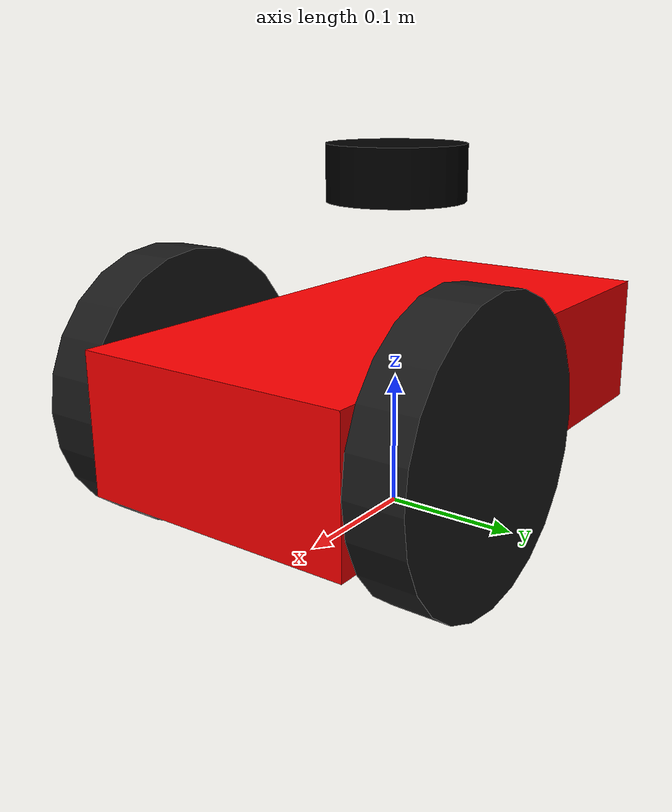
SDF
<?xml version="1.0" ?>
<sdf version="1.8">
  <model name="diff_drive_robot">

    <static>false</static>

    <link name="base_link">
      <pose>0 0 0.1 0 0 0</pose>

      <visual name="chassis_visual">
        <geometry>
          <box><size>0.4 0.2 0.1</size></box>
        </geometry>
        <material>
          <ambient>1.0 0.0 0.0 1.0</ambient>   <diffuse>1.0 0.0 0.0 1.0</diffuse>   <specular>0.5 0.5 0.5 1.0</specular>
        </material>
      </visual>

      <collision name="chassis_collision">
        <geometry>
          <box><size>0.4 0.2 0.1</size></box>
        </geometry>
      </collision>

      <inertial>
        <mass>2.0</mass>
        <inertia>
          <ixx>0.008333</ixx>
          <iyy>0.028333</iyy>
          <izz>0.033333</izz>
          <ixy>0.0</ixy>
          <ixz>0.0</ixz>
          <iyz>0.0</iyz>
        </inertia>
      </inertial>
    </link>

<link name="left_wheel">
      <pose>0.1 0.12 0.1 -1.5707 0 0</pose>
      <visual name="left_wheel_visual">
        <geometry>
          <cylinder><radius>0.1</radius><length>0.04</length></cylinder>
        </geometry>
        <material><ambient>0.1 0.1 0.1 1.0</ambient></material>
      </visual>
      <collision name="left_wheel_collision">
        <geometry>
          <cylinder><radius>0.1</radius><length>0.04</length></cylinder>
        </geometry>
      </collision>
      <inertial>
        <mass>0.5</mass>
        <inertia>
            <ixx>0.001316</ixx>
            <iyy>0.001316</iyy>
            <izz>0.002500</izz>
            <ixy>0.0</ixy>
            <ixz>0.0</ixz>
            <iyz>0.0</iyz>
          </inertia>
        </inertial>
    </link>

    <joint name="left_wheel_joint" type="revolute">
      <parent>base_link</parent>
      <child>left_wheel</child>
      <axis>
        <xyz>0 0 1</xyz>
        <limit>
          <lower>-1e16</lower>
          <upper>1e16</upper>
        </limit>
      </axis>
    </joint>

<link name="right_wheel">
      <pose>0.1 -0.12 0.1 -1.5707 0 0</pose>
      <visual name="right_wheel_visual">
        <geometry>
          <cylinder><radius>0.1</radius><length>0.04</length></cylinder>
        </geometry>
        <material><ambient>0.1 0.1 0.1 1.0</ambient></material>
      </visual>
      <collision name="right_wheel_collision">
        <geometry>
          <cylinder><radius>0.1</radius><length>0.04</length></cylinder>
        </geometry>
      </collision>
      <inertial>
        <mass>0.5</mass>
        <inertia>
            <ixx>0.001316</ixx>
            <iyy>0.001316</iyy>
            <izz>0.002500</izz>
            <ixy>0.0</ixy>
            <ixz>0.0</ixz>
            <iyz>0.0</iyz>
          </inertia>
        </inertial>
    </link>

    <joint name="right_wheel_joint" type="revolute">
      <parent>base_link</parent>
      <child>right_wheel</child>
      <axis>
        <xyz>0 0 1</xyz>
        <limit>
          <lower>-1e16</lower>
          <upper>1e16</upper>
        </limit>
      </axis>
    </joint>

<link name="caster_wheel">
      <pose>-0.15 0.0 0.05 0 0 0</pose>
      <visual name="caster_wheel_visual">
        <geometry>
          <sphere><radius>0.05</radius></sphere>
        </geometry>
        <material><ambient>0.1 0.1 0.1 1.0</ambient></material>
      </visual>
      <collision name="caster_collision">
        <geometry>
          <sphere><radius>0.05</radius></sphere>
        </geometry>
        <surface>
          <friction>
            <ode>
              <mu>0.0</mu>
              <mu2>0.0</mu2>
            </ode>
          </friction>
        </surface>
      </collision>
      <inertial>
        <mass>0.1</mass>
        <inertia>
          <ixx>0.0001</ixx>
          <iyy>0.0001</iyy>
          <izz>0.0001</izz>
          <ixy>0.0</ixy>
          <ixz>0.0</ixz>
          <iyz>0.0</iyz>
        </inertia>
      </inertial>
    </link>

    <joint name="caster_wheel_joint" type="fixed">
      <parent>base_link</parent>
      <child>caster_wheel</child>
    </joint>

    <plugin filename="gz-sim-diff-drive-system" name="gz::sim::systems::DiffDrive">
      <left_joint>left_wheel_joint</left_joint>
      <right_joint>right_wheel_joint</right_joint>
      <wheel_separation>0.24</wheel_separation>
      <wheel_radius>0.1</wheel_radius>
      <topic>/cmd_vel</topic>
    </plugin>

<link name="lidar_link">
      <pose>0 0 0.25 0 0 0</pose>
      <visual name="lidar_visual">
        <geometry>
          <cylinder>
            <radius>0.05</radius>
            <length>0.04</length>
          </cylinder>
        </geometry>
        <material>
          <ambient>0.0 0.0 0.0 1.0</ambient>
          <diffuse>0.0 0.0 0.0 1.0</diffuse>
        </material>
      </visual>

      <inertial>
        <mass>0.1</mass>
        <inertia>
          <ixx>0.0001</ixx>
          <iyy>0.0001</iyy>
          <izz>0.0001</izz>
          <ixy>0.0</ixy>
          <ixz>0.0</ixz>
          <iyz>0.0</iyz>
        </inertia>
      </inertial>

      <sensor name="lidar_sensor" type="gpu_lidar">
        <pose>0 0 0.03 0 0 0</pose>
        <always_on>true</always_on>
        <visualize>true</visualize>
        <update_rate>10</update_rate>
        <topic>/scan</topic>
        <frame_id>lidar_link</frame_id>
        <lidar>
          <scan>
            <horizontal>
              <samples>360</samples>
              <resolution>1.0</resolution>
              <min_angle>-3.14159</min_angle>
              <max_angle>3.14159</max_angle>
            </horizontal>
          </scan>
          <range>
            <min>0.12</min>
            <max>8.0</max>
            <resolution>0.015</resolution>
          </range>
          <noise>
            <type>gaussian</type>
            <mean>0.0</mean>
            <stddev>0.01</stddev>
          </noise>
        </lidar>
      </sensor>
    </link>

    <joint name="lidar_joint" type="fixed">
      <parent>base_link</parent>
      <child>lidar_link</child>
    </joint>

  </model>
</sdf>
